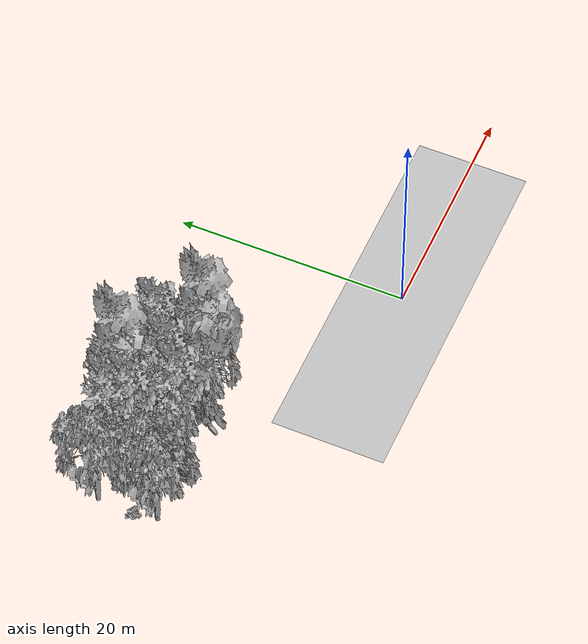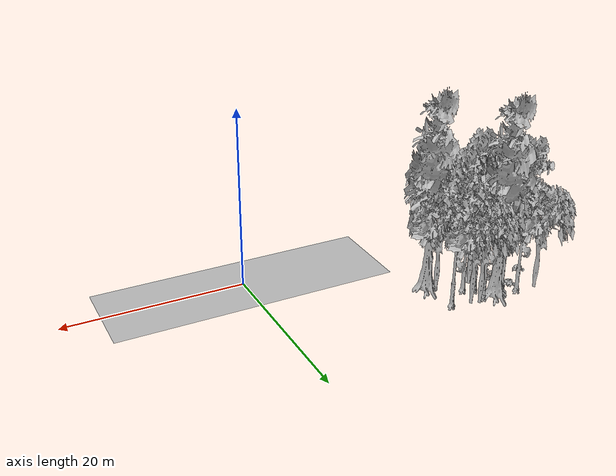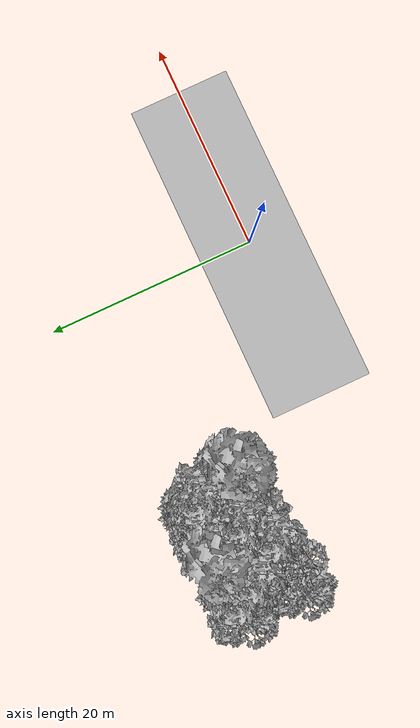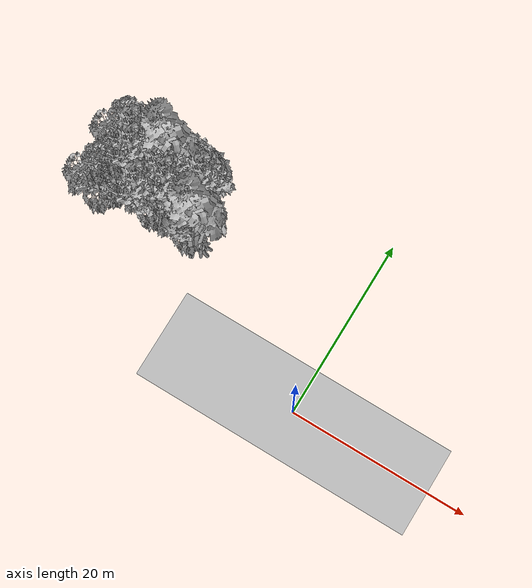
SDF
<sdf version="1.7">
 <world name="default">
  <model name="ground_plane">
   <static>1</static>
   <link name="link">
    <collision name="collision">
     <geometry><plane><normal>0 0 1</normal><size>100 100</size></plane></geometry>
     <surface><contact><ode><min_depth>0.01</min_depth><max_vel>0</max_vel></ode></contact></surface>
    </collision>
    <visual name="grass">
     <cast_shadows>0</cast_shadows>
     <geometry>
      <mesh>
       <scale>0.5814285714285714 0.18142857142857144 0.1</scale>
       <uri>file://grass_plane/meshes/grass_plane.dae</uri>
      </mesh>
     </geometry>
    </visual>
   </link>
  </model>
  <model name="Tree 2">
   <static>1</static>
   <pose>-26.095646035066228 14.019821016825997 0 1.57079 -0 0</pose>
   <link name="link">
    <collision name="collision">
     <geometry><mesh><scale>3.5 5 3.5</scale><uri>model://tree_9/meshes/tree_9.obj</uri></mesh></geometry>
    </collision>
    <visual name="visual">
     <geometry><mesh><scale>3.5 5 3.5</scale><uri>model://tree_9/meshes/tree_9.obj</uri></mesh></geometry>
    </visual>
   </link>
  </model>
  <model name="Tree 7">
   <static>1</static>
   <pose>-22.19975299772507 10.766872606019188 0 1.57079 -0 0</pose>
   <link name="link">
    <collision name="collision">
     <geometry><mesh><scale>3.5 5 3.5</scale><uri>model://tree_2/meshes/tree_2.obj</uri></mesh></geometry>
    </collision>
    <visual name="visual">
     <geometry><mesh><scale>3.5 5 3.5</scale><uri>model://tree_2/meshes/tree_2.obj</uri></mesh></geometry>
    </visual>
   </link>
  </model>
  <model name="Tree 10">
   <static>1</static>
   <pose>-21.964925081223402 12.030915643776876 0 1.57079 -0 0</pose>
   <link name="link">
    <collision name="collision">
     <geometry><mesh><scale>3.5 5 3.5</scale><uri>model://tree_9/meshes/tree_9.obj</uri></mesh></geometry>
    </collision>
    <visual name="visual">
     <geometry><mesh><scale>3.5 5 3.5</scale><uri>model://tree_9/meshes/tree_9.obj</uri></mesh></geometry>
    </visual>
   </link>
  </model>
  <model name="Tree 29">
   <static>1</static>
   <pose>-26.8489966164462 10.760684531997772 0 1.57079 -0 0</pose>
   <link name="link">
    <collision name="collision">
     <geometry><mesh><scale>3.5 5 3.5</scale><uri>model://tree_2/meshes/tree_2.obj</uri></mesh></geometry>
    </collision>
    <visual name="visual">
     <geometry><mesh><scale>3.5 5 3.5</scale><uri>model://tree_2/meshes/tree_2.obj</uri></mesh></geometry>
    </visual>
   </link>
  </model>
  <model name="Tree 166">
   <static>1</static>
   <pose>-23.026610489211304 14.306494078200998 0 1.57079 -0 0</pose>
   <link name="link">
    <collision name="collision">
     <geometry><mesh><scale>3.5 5 3.5</scale><uri>model://tree_4/meshes/tree_4.obj</uri></mesh></geometry>
    </collision>
    <visual name="visual">
     <geometry><mesh><scale>3.5 5 3.5</scale><uri>model://tree_4/meshes/tree_4.obj</uri></mesh></geometry>
    </visual>
   </link>
  </model>
  <model name="Tree 205">
   <static>1</static>
   <pose>-27.951253629681812 9.43081952792744 0 1.57079 -0 0</pose>
   <link name="link">
    <collision name="collision">
     <geometry><mesh><scale>3.5 5 3.5</scale><uri>model://tree_2/meshes/tree_2.obj</uri></mesh></geometry>
    </collision>
    <visual name="visual">
     <geometry><mesh><scale>3.5 5 3.5</scale><uri>model://tree_2/meshes/tree_2.obj</uri></mesh></geometry>
    </visual>
   </link>
  </model>
  <model name="Tree 222">
   <static>1</static>
   <pose>-23.78102329799122 12.959543089492723 0 1.57079 -0 0</pose>
   <link name="link">
    <collision name="collision">
     <geometry><mesh><scale>3.5 5 3.5</scale><uri>model://tree_2/meshes/tree_2.obj</uri></mesh></geometry>
    </collision>
    <visual name="visual">
     <geometry><mesh><scale>3.5 5 3.5</scale><uri>model://tree_2/meshes/tree_2.obj</uri></mesh></geometry>
    </visual>
   </link>
  </model>
  <model name="Tree 227">
   <static>1</static>
   <pose>-20.843022852561056 11.47541577770249 0 1.57079 -0 0</pose>
   <link name="link">
    <collision name="collision">
     <geometry><mesh><scale>3.5 5 3.5</scale><uri>model://tree_9/meshes/tree_9.obj</uri></mesh></geometry>
    </collision>
    <visual name="visual">
     <geometry><mesh><scale>3.5 5 3.5</scale><uri>model://tree_9/meshes/tree_9.obj</uri></mesh></geometry>
    </visual>
   </link>
  </model>
  <model name="Tree 238">
   <static>1</static>
   <pose>-18.139432087600333 10.383572770499939 0 1.57079 -0 0</pose>
   <link name="link">
    <collision name="collision">
     <geometry><mesh><scale>3.5 5 3.5</scale><uri>model://tree_2/meshes/tree_2.obj</uri></mesh></geometry>
    </collision>
    <visual name="visual">
     <geometry><mesh><scale>3.5 5 3.5</scale><uri>model://tree_2/meshes/tree_2.obj</uri></mesh></geometry>
    </visual>
   </link>
  </model>
  <model name="Tree 241">
   <static>1</static>
   <pose>-20.819100585316512 14.62271337058204 0 1.57079 -0 0</pose>
   <link name="link">
    <collision name="collision">
     <geometry><mesh><scale>3.5 5 3.5</scale><uri>model://tree_2/meshes/tree_2.obj</uri></mesh></geometry>
    </collision>
    <visual name="visual">
     <geometry><mesh><scale>3.5 5 3.5</scale><uri>model://tree_2/meshes/tree_2.obj</uri></mesh></geometry>
    </visual>
   </link>
  </model>
  <model name="Tree 247">
   <static>1</static>
   <pose>-22.886649618121627 9.61797670354316 0 1.57079 -0 0</pose>
   <link name="link">
    <collision name="collision">
     <geometry><mesh><scale>3.5 5 3.5</scale><uri>model://tree_9/meshes/tree_9.obj</uri></mesh></geometry>
    </collision>
    <visual name="visual">
     <geometry><mesh><scale>3.5 5 3.5</scale><uri>model://tree_9/meshes/tree_9.obj</uri></mesh></geometry>
    </visual>
   </link>
  </model>
  <model name="Tree 248">
   <static>1</static>
   <pose>-19.96158036219239 14.27424320201511 0 1.57079 -0 0</pose>
   <link name="link">
    <collision name="collision">
     <geometry><mesh><scale>3.5 5 3.5</scale><uri>model://tree_2/meshes/tree_2.obj</uri></mesh></geometry>
    </collision>
    <visual name="visual">
     <geometry><mesh><scale>3.5 5 3.5</scale><uri>model://tree_2/meshes/tree_2.obj</uri></mesh></geometry>
    </visual>
   </link>
  </model>
  <model name="Tree 277">
   <static>1</static>
   <pose>-25.219490916282226 12.605718761873533 0 1.57079 -0 0</pose>
   <link name="link">
    <collision name="collision">
     <geometry><mesh><scale>3.5 5 3.5</scale><uri>model://tree_9/meshes/tree_9.obj</uri></mesh></geometry>
    </collision>
    <visual name="visual">
     <geometry><mesh><scale>3.5 5 3.5</scale><uri>model://tree_9/meshes/tree_9.obj</uri></mesh></geometry>
    </visual>
   </link>
  </model>
  <model name="Tree 317">
   <static>1</static>
   <pose>-21.891193535512443 13.735453850254434 0 1.57079 -0 0</pose>
   <link name="link">
    <collision name="collision">
     <geometry><mesh><scale>3.5 5 3.5</scale><uri>model://tree_9/meshes/tree_9.obj</uri></mesh></geometry>
    </collision>
    <visual name="visual">
     <geometry><mesh><scale>3.5 5 3.5</scale><uri>model://tree_9/meshes/tree_9.obj</uri></mesh></geometry>
    </visual>
   </link>
  </model>
  <model name="Tree 368">
   <static>1</static>
   <pose>-28.100828386703 14.576235476371156 0 1.57079 -0 0</pose>
   <link name="link">
    <collision name="collision">
     <geometry><mesh><scale>3.5 5 3.5</scale><uri>model://tree_2/meshes/tree_2.obj</uri></mesh></geometry>
    </collision>
    <visual name="visual">
     <geometry><mesh><scale>3.5 5 3.5</scale><uri>model://tree_2/meshes/tree_2.obj</uri></mesh></geometry>
    </visual>
   </link>
  </model>
  <model name="Tree 421">
   <static>1</static>
   <pose>-17.25722542734959 9.7895927030291 0 1.57079 -0 0</pose>
   <link name="link">
    <collision name="collision">
     <geometry><mesh><scale>3.5 5 3.5</scale><uri>model://tree_4/meshes/tree_4.obj</uri></mesh></geometry>
    </collision>
    <visual name="visual">
     <geometry><mesh><scale>3.5 5 3.5</scale><uri>model://tree_4/meshes/tree_4.obj</uri></mesh></geometry>
    </visual>
   </link>
  </model>
  <model name="Tree 434">
   <static>1</static>
   <pose>-17.93862899256955 13.592428065596817 0 1.57079 -0 0</pose>
   <link name="link">
    <collision name="collision">
     <geometry><mesh><scale>3.5 5 3.5</scale><uri>model://tree_9/meshes/tree_9.obj</uri></mesh></geometry>
    </collision>
    <visual name="visual">
     <geometry><mesh><scale>3.5 5 3.5</scale><uri>model://tree_9/meshes/tree_9.obj</uri></mesh></geometry>
    </visual>
   </link>
  </model>
  <model name="Bush 68">
   <static>1</static>
   <pose>-23.405033156738348 9.042740504271631 0 1.57079 -0 0</pose>
   <link name="link">
    <collision name="collision">
     <geometry><mesh><scale>2 2 2</scale><uri>model://bush_0/meshes/bush_0.obj</uri></mesh></geometry>
     <surface><contact><collide_without_contact>false</collide_without_contact></contact></surface>
    </collision>
    <visual name="visual">
     <geometry><mesh><scale>2 2 2</scale><uri>model://bush_0/meshes/bush_0.obj</uri></mesh></geometry>
    </visual>
   </link>
  </model>
  <model name="Bush 119">
   <static>1</static>
   <pose>-28.307987371586076 11.345963933396014 0 1.57079 -0 0</pose>
   <link name="link">
    <collision name="collision">
     <geometry><mesh><scale>2 2 2</scale><uri>model://bush_3/meshes/bush_3.obj</uri></mesh></geometry>
     <surface><contact><collide_without_contact>false</collide_without_contact></contact></surface>
    </collision>
    <visual name="visual">
     <geometry><mesh><scale>2 2 2</scale><uri>model://bush_3/meshes/bush_3.obj</uri></mesh></geometry>
    </visual>
   </link>
  </model>
  <model name="Bush 181">
   <static>1</static>
   <pose>-23.870509249417648 12.122303925927767 0 1.57079 -0 0</pose>
   <link name="link">
    <collision name="collision">
     <geometry><mesh><scale>2 2 2</scale><uri>model://bush_5/meshes/bush_5.obj</uri></mesh></geometry>
     <surface><contact><collide_without_contact>false</collide_without_contact></contact></surface>
    </collision>
    <visual name="visual">
     <geometry><mesh><scale>2 2 2</scale><uri>model://bush_5/meshes/bush_5.obj</uri></mesh></geometry>
    </visual>
   </link>
  </model>
  <model name="Bush 251">
   <static>1</static>
   <pose>-25.380681182007965 13.425192786640256 0 1.57079 -0 0</pose>
   <link name="link">
    <collision name="collision">
     <geometry><mesh><scale>2 2 2</scale><uri>model://bush_3/meshes/bush_3.obj</uri></mesh></geometry>
     <surface><contact><collide_without_contact>false</collide_without_contact></contact></surface>
    </collision>
    <visual name="visual">
     <geometry><mesh><scale>2 2 2</scale><uri>model://bush_3/meshes/bush_3.obj</uri></mesh></geometry>
    </visual>
   </link>
  </model>
  <model name="Bush 325">
   <static>1</static>
   <pose>-23.278430878277497 8.90853252903307 0 1.57079 -0 0</pose>
   <link name="link">
    <collision name="collision">
     <geometry><mesh><scale>2 2 2</scale><uri>model://bush_2/meshes/bush_2.obj</uri></mesh></geometry>
     <surface><contact><collide_without_contact>false</collide_without_contact></contact></surface>
    </collision>
    <visual name="visual">
     <geometry><mesh><scale>2 2 2</scale><uri>model://bush_2/meshes/bush_2.obj</uri></mesh></geometry>
    </visual>
   </link>
  </model>
 </world>
</sdf>
